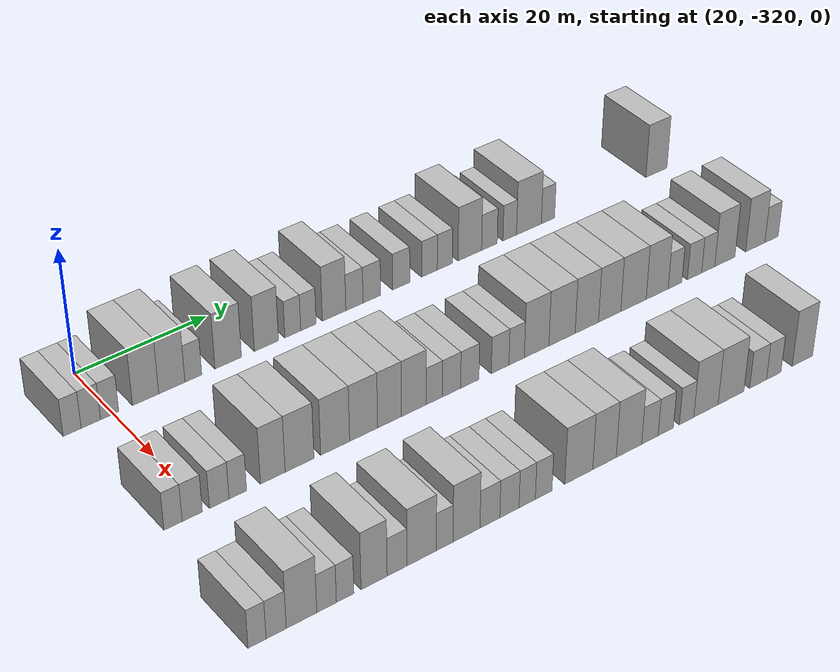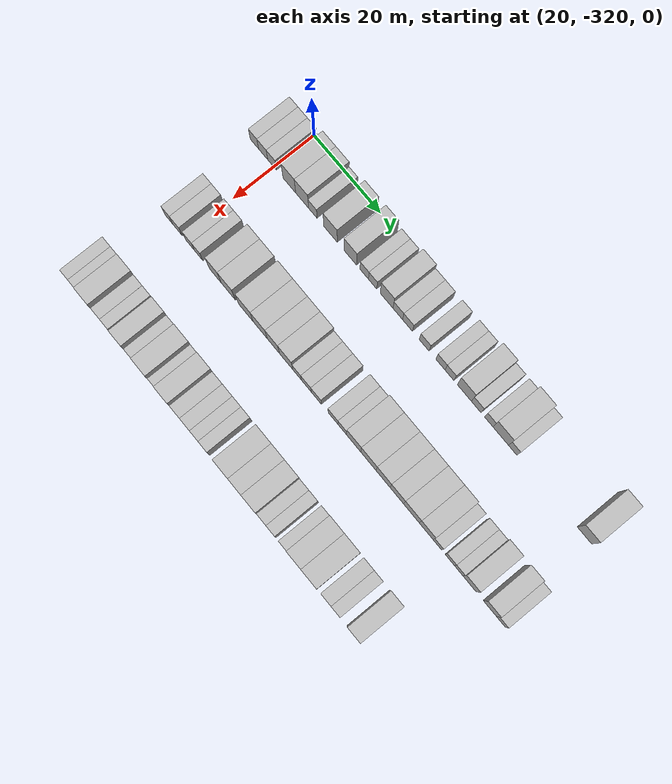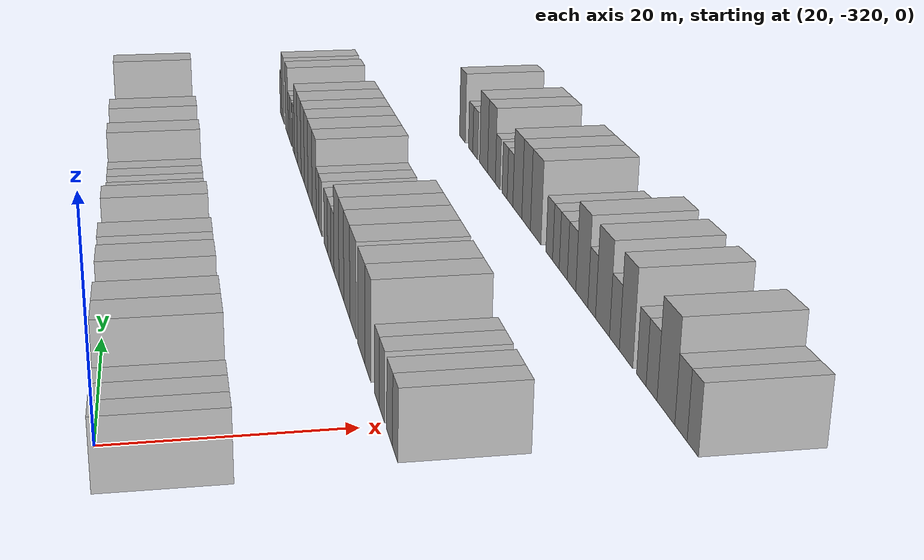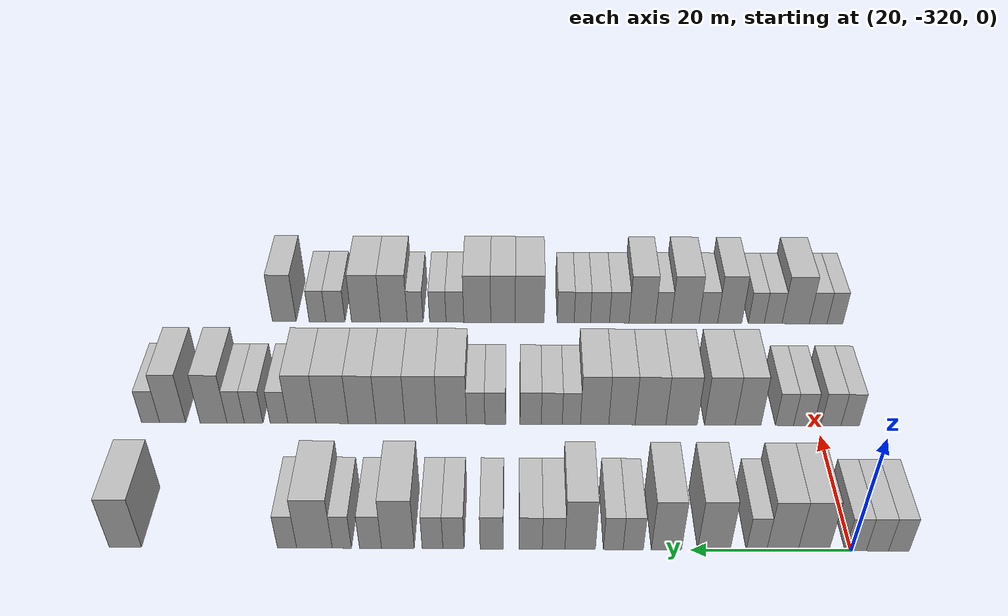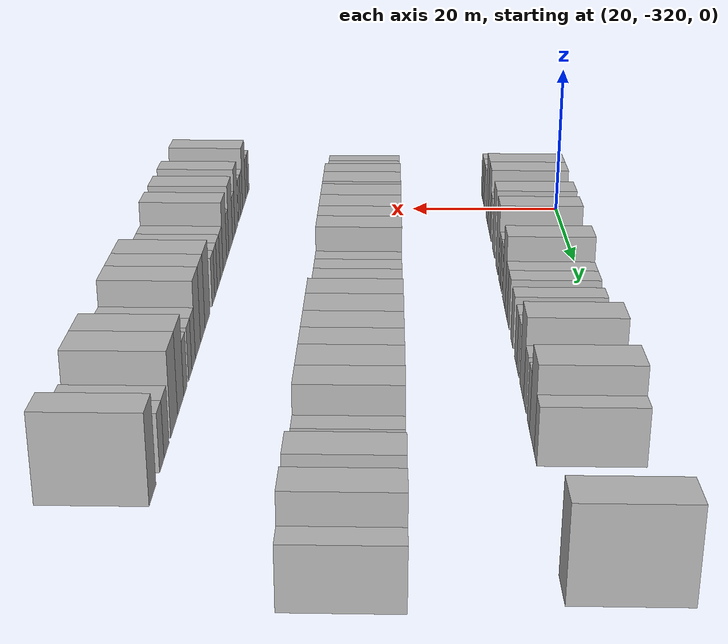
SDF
<sdf version="1.6">
 <world name="default">
  <model name="building_14">
   <static>1</static>
   <pose>25.0000 -325.9310 0 0.000000 0.000000 0.000000</pose>
   <link name="link">
    <pose>0 0 3.00 0 0 0</pose>
    <collision name="collision"><geometry><box><size>10.0000 2.5707 6.0000</size></box></geometry></collision>
    <visual name="visual">
     <cast_shadows>0</cast_shadows>
     <geometry><box><size>10.0000 2.5707 6.0000</size></box></geometry>
     <material>
      <script>
       <uri>model://HANNAS_wall/materials/scripts</uri>
       <uri>model://HANNAS_wall/materials/textures</uri>
       <name>vrc/HANNAS_wall</name>
      </script>
     </material>
    </visual>
   </link>
  </model>
  <model name="building_15">
   <static>1</static>
   <pose>25.0000 -323.2511 0 0.000000 0.000000 0.000000</pose>
   <link name="link">
    <pose>0 0 3.00 0 0 0</pose>
    <collision name="collision"><geometry><box><size>10.0000 2.7890 6.0000</size></box></geometry></collision>
    <visual name="visual">
     <cast_shadows>0</cast_shadows>
     <geometry><box><size>10.0000 2.7890 6.0000</size></box></geometry>
     <material>
      <script>
       <uri>model://HANNAS_wall/materials/scripts</uri>
       <uri>model://HANNAS_wall/materials/textures</uri>
       <name>vrc/HANNAS_wall</name>
      </script>
     </material>
    </visual>
   </link>
  </model>
  <model name="building_16">
   <static>1</static>
   <pose>25.0000 -320.5339 0 0.000000 0.000000 0.000000</pose>
   <link name="link">
    <pose>0 0 3.00 0 0 0</pose>
    <collision name="collision"><geometry><box><size>10.0000 2.6454 6.0000</size></box></geometry></collision>
    <visual name="visual">
     <cast_shadows>0</cast_shadows>
     <geometry><box><size>10.0000 2.6454 6.0000</size></box></geometry>
     <material>
      <script>
       <uri>model://HANNAS_wall/materials/scripts</uri>
       <uri>model://HANNAS_wall/materials/textures</uri>
       <name>vrc/HANNAS_wall</name>
      </script>
     </material>
    </visual>
   </link>
  </model>
  <model name="building_17">
   <static>1</static>
   <pose>25.0000 -315.2770 0 0.000000 0.000000 0.000000</pose>
   <link name="link">
    <pose>0 0 4.50 0 0 0</pose>
    <collision name="collision"><geometry><box><size>10.0000 3.8684 9.0000</size></box></geometry></collision>
    <visual name="visual">
     <cast_shadows>0</cast_shadows>
     <geometry><box><size>10.0000 3.8684 9.0000</size></box></geometry>
     <material>
      <script>
       <uri>model://HANNAS_wall/materials/scripts</uri>
       <uri>model://HANNAS_wall/materials/textures</uri>
       <name>vrc/HANNAS_wall</name>
      </script>
     </material>
    </visual>
   </link>
  </model>
  <model name="building_18">
   <static>1</static>
   <pose>25.0000 -311.3818 0 0.000000 0.000000 0.000000</pose>
   <link name="link">
    <pose>0 0 4.50 0 0 0</pose>
    <collision name="collision"><geometry><box><size>10.0000 3.9218 9.0000</size></box></geometry></collision>
    <visual name="visual">
     <cast_shadows>0</cast_shadows>
     <geometry><box><size>10.0000 3.9218 9.0000</size></box></geometry>
     <material>
      <script>
       <uri>model://HANNAS_wall/materials/scripts</uri>
       <uri>model://HANNAS_wall/materials/textures</uri>
       <name>vrc/HANNAS_wall</name>
      </script>
     </material>
    </visual>
   </link>
  </model>
  <model name="building_19">
   <static>1</static>
   <pose>25.0000 -308.1503 0 0.000000 0.000000 0.000000</pose>
   <link name="link">
    <pose>0 0 3.00 0 0 0</pose>
    <collision name="collision"><geometry><box><size>10.0000 2.5412 6.0000</size></box></geometry></collision>
    <visual name="visual">
     <cast_shadows>0</cast_shadows>
     <geometry><box><size>10.0000 2.5412 6.0000</size></box></geometry>
     <material>
      <script>
       <uri>model://HANNAS_wall/materials/scripts</uri>
       <uri>model://HANNAS_wall/materials/textures</uri>
       <name>vrc/HANNAS_wall</name>
      </script>
     </material>
    </visual>
   </link>
  </model>
  <model name="building_20">
   <static>1</static>
   <pose>25.0000 -302.8381 0 0.000000 0.000000 0.000000</pose>
   <link name="link">
    <pose>0 0 4.50 0 0 0</pose>
    <collision name="collision"><geometry><box><size>10.0000 4.0833 9.0000</size></box></geometry></collision>
    <visual name="visual">
     <cast_shadows>0</cast_shadows>
     <geometry><box><size>10.0000 4.0833 9.0000</size></box></geometry>
     <material>
      <script>
       <uri>model://HANNAS_wall/materials/scripts</uri>
       <uri>model://HANNAS_wall/materials/textures</uri>
       <name>vrc/HANNAS_wall</name>
      </script>
     </material>
    </visual>
   </link>
  </model>
  <model name="building_21">
   <static>1</static>
   <pose>25.0000 -296.9095 0 0.000000 0.000000 0.000000</pose>
   <link name="link">
    <pose>0 0 4.50 0 0 0</pose>
    <collision name="collision"><geometry><box><size>10.0000 3.7738 9.0000</size></box></geometry></collision>
    <visual name="visual">
     <cast_shadows>0</cast_shadows>
     <geometry><box><size>10.0000 3.7738 9.0000</size></box></geometry>
     <material>
      <script>
       <uri>model://HANNAS_wall/materials/scripts</uri>
       <uri>model://HANNAS_wall/materials/textures</uri>
       <name>vrc/HANNAS_wall</name>
      </script>
     </material>
    </visual>
   </link>
  </model>
  <model name="building_22">
   <static>1</static>
   <pose>25.0000 -292.7571 0 0.000000 0.000000 0.000000</pose>
   <link name="link">
    <pose>0 0 3.00 0 0 0</pose>
    <collision name="collision"><geometry><box><size>10.0000 2.5310 6.0000</size></box></geometry></collision>
    <visual name="visual">
     <cast_shadows>0</cast_shadows>
     <geometry><box><size>10.0000 2.5310 6.0000</size></box></geometry>
     <material>
      <script>
       <uri>model://HANNAS_wall/materials/scripts</uri>
       <uri>model://HANNAS_wall/materials/textures</uri>
       <name>vrc/HANNAS_wall</name>
      </script>
     </material>
    </visual>
   </link>
  </model>
  <model name="building_23">
   <static>1</static>
   <pose>25.0000 -290.2609 0 0.000000 0.000000 0.000000</pose>
   <link name="link">
    <pose>0 0 3.00 0 0 0</pose>
    <collision name="collision"><geometry><box><size>10.0000 2.4615 6.0000</size></box></geometry></collision>
    <visual name="visual">
     <cast_shadows>0</cast_shadows>
     <geometry><box><size>10.0000 2.4615 6.0000</size></box></geometry>
     <material>
      <script>
       <uri>model://HANNAS_wall/materials/scripts</uri>
       <uri>model://HANNAS_wall/materials/textures</uri>
       <name>vrc/HANNAS_wall</name>
      </script>
     </material>
    </visual>
   </link>
  </model>
  <model name="building_24">
   <static>1</static>
   <pose>25.0000 -286.1268 0 0.000000 0.000000 0.000000</pose>
   <link name="link">
    <pose>0 0 4.50 0 0 0</pose>
    <collision name="collision"><geometry><box><size>10.0000 3.8066 9.0000</size></box></geometry></collision>
    <visual name="visual">
     <cast_shadows>0</cast_shadows>
     <geometry><box><size>10.0000 3.8066 9.0000</size></box></geometry>
     <material>
      <script>
       <uri>model://HANNAS_wall/materials/scripts</uri>
       <uri>model://HANNAS_wall/materials/textures</uri>
       <name>vrc/HANNAS_wall</name>
      </script>
     </material>
    </visual>
   </link>
  </model>
  <model name="building_25">
   <static>1</static>
   <pose>25.0000 -282.8087 0 0.000000 0.000000 0.000000</pose>
   <link name="link">
    <pose>0 0 3.00 0 0 0</pose>
    <collision name="collision"><geometry><box><size>10.0000 2.8295 6.0000</size></box></geometry></collision>
    <visual name="visual">
     <cast_shadows>0</cast_shadows>
     <geometry><box><size>10.0000 2.8295 6.0000</size></box></geometry>
     <material>
      <script>
       <uri>model://HANNAS_wall/materials/scripts</uri>
       <uri>model://HANNAS_wall/materials/textures</uri>
       <name>vrc/HANNAS_wall</name>
      </script>
     </material>
    </visual>
   </link>
  </model>
  <model name="building_26">
   <static>1</static>
   <pose>25.0000 -279.9445 0 0.000000 0.000000 0.000000</pose>
   <link name="link">
    <pose>0 0 3.00 0 0 0</pose>
    <collision name="collision"><geometry><box><size>10.0000 2.8990 6.0000</size></box></geometry></collision>
    <visual name="visual">
     <cast_shadows>0</cast_shadows>
     <geometry><box><size>10.0000 2.8990 6.0000</size></box></geometry>
     <material>
      <script>
       <uri>model://HANNAS_wall/materials/scripts</uri>
       <uri>model://HANNAS_wall/materials/textures</uri>
       <name>vrc/HANNAS_wall</name>
      </script>
     </material>
    </visual>
   </link>
  </model>
  <model name="building_27">
   <static>1</static>
   <pose>25.0000 -275.0564 0 0.000000 0.000000 0.000000</pose>
   <link name="link">
    <pose>0 0 3.00 0 0 0</pose>
    <collision name="collision"><geometry><box><size>10.0000 2.8771 6.0000</size></box></geometry></collision>
    <visual name="visual">
     <cast_shadows>0</cast_shadows>
     <geometry><box><size>10.0000 2.8771 6.0000</size></box></geometry>
     <material>
      <script>
       <uri>model://HANNAS_wall/materials/scripts</uri>
       <uri>model://HANNAS_wall/materials/textures</uri>
       <name>vrc/HANNAS_wall</name>
      </script>
     </material>
    </visual>
   </link>
  </model>
  <model name="building_28">
   <static>1</static>
   <pose>25.0000 -270.2912 0 0.000000 0.000000 0.000000</pose>
   <link name="link">
    <pose>0 0 3.00 0 0 0</pose>
    <collision name="collision"><geometry><box><size>10.0000 2.6533 6.0000</size></box></geometry></collision>
    <visual name="visual">
     <cast_shadows>0</cast_shadows>
     <geometry><box><size>10.0000 2.6533 6.0000</size></box></geometry>
     <material>
      <script>
       <uri>model://HANNAS_wall/materials/scripts</uri>
       <uri>model://HANNAS_wall/materials/textures</uri>
       <name>vrc/HANNAS_wall</name>
      </script>
     </material>
    </visual>
   </link>
  </model>
  <model name="building_29">
   <static>1</static>
   <pose>25.0000 -267.6693 0 0.000000 0.000000 0.000000</pose>
   <link name="link">
    <pose>0 0 3.00 0 0 0</pose>
    <collision name="collision"><geometry><box><size>10.0000 2.5907 6.0000</size></box></geometry></collision>
    <visual name="visual">
     <cast_shadows>0</cast_shadows>
     <geometry><box><size>10.0000 2.5907 6.0000</size></box></geometry>
     <material>
      <script>
       <uri>model://HANNAS_wall/materials/scripts</uri>
       <uri>model://HANNAS_wall/materials/textures</uri>
       <name>vrc/HANNAS_wall</name>
      </script>
     </material>
    </visual>
   </link>
  </model>
  <model name="building_30">
   <static>1</static>
   <pose>25.0000 -263.3270 0 0.000000 0.000000 0.000000</pose>
   <link name="link">
    <pose>0 0 4.50 0 0 0</pose>
    <collision name="collision"><geometry><box><size>10.0000 4.0939 9.0000</size></box></geometry></collision>
    <visual name="visual">
     <cast_shadows>0</cast_shadows>
     <geometry><box><size>10.0000 4.0939 9.0000</size></box></geometry>
     <material>
      <script>
       <uri>model://HANNAS_wall/materials/scripts</uri>
       <uri>model://HANNAS_wall/materials/textures</uri>
       <name>vrc/HANNAS_wall</name>
      </script>
     </material>
    </visual>
   </link>
  </model>
  <model name="building_31">
   <static>1</static>
   <pose>25.0000 -259.9006 0 0.000000 0.000000 0.000000</pose>
   <link name="link">
    <pose>0 0 3.00 0 0 0</pose>
    <collision name="collision"><geometry><box><size>10.0000 2.7589 6.0000</size></box></geometry></collision>
    <visual name="visual">
     <cast_shadows>0</cast_shadows>
     <geometry><box><size>10.0000 2.7589 6.0000</size></box></geometry>
     <material>
      <script>
       <uri>model://HANNAS_wall/materials/scripts</uri>
       <uri>model://HANNAS_wall/materials/textures</uri>
       <name>vrc/HANNAS_wall</name>
      </script>
     </material>
    </visual>
   </link>
  </model>
  <model name="building_32">
   <static>1</static>
   <pose>25.0000 -256.3173 0 0.000000 0.000000 0.000000</pose>
   <link name="link">
    <pose>0 0 3.00 0 0 0</pose>
    <collision name="collision"><geometry><box><size>10.0000 2.4076 6.0000</size></box></geometry></collision>
    <visual name="visual">
     <cast_shadows>0</cast_shadows>
     <geometry><box><size>10.0000 2.4076 6.0000</size></box></geometry>
     <material>
      <script>
       <uri>model://HANNAS_wall/materials/scripts</uri>
       <uri>model://HANNAS_wall/materials/textures</uri>
       <name>vrc/HANNAS_wall</name>
      </script>
     </material>
    </visual>
   </link>
  </model>
  <model name="building_33">
   <static>1</static>
   <pose>25.0000 -252.8828 0 0.000000 0.000000 0.000000</pose>
   <link name="link">
    <pose>0 0 4.50 0 0 0</pose>
    <collision name="collision"><geometry><box><size>10.0000 4.4615 9.0000</size></box></geometry></collision>
    <visual name="visual">
     <cast_shadows>0</cast_shadows>
     <geometry><box><size>10.0000 4.4615 9.0000</size></box></geometry>
     <material>
      <script>
       <uri>model://HANNAS_wall/materials/scripts</uri>
       <uri>model://HANNAS_wall/materials/textures</uri>
       <name>vrc/HANNAS_wall</name>
      </script>
     </material>
    </visual>
   </link>
  </model>
  <model name="building_34">
   <static>1</static>
   <pose>25.0000 -249.4488 0 0.000000 0.000000 0.000000</pose>
   <link name="link">
    <pose>0 0 3.00 0 0 0</pose>
    <collision name="collision"><geometry><box><size>10.0000 2.4065 6.0000</size></box></geometry></collision>
    <visual name="visual">
     <cast_shadows>0</cast_shadows>
     <geometry><box><size>10.0000 2.4065 6.0000</size></box></geometry>
     <material>
      <script>
       <uri>model://HANNAS_wall/materials/scripts</uri>
       <uri>model://HANNAS_wall/materials/textures</uri>
       <name>vrc/HANNAS_wall</name>
      </script>
     </material>
    </visual>
   </link>
  </model>
  <model name="building_35">
   <static>1</static>
   <pose>25.0000 -229.1625 0 0.000000 0.000000 0.000000</pose>
   <link name="link">
    <pose>0 0 4.50 0 0 0</pose>
    <collision name="collision"><geometry><box><size>10.0000 4.0554 9.0000</size></box></geometry></collision>
    <visual name="visual">
     <cast_shadows>0</cast_shadows>
     <geometry><box><size>10.0000 4.0554 9.0000</size></box></geometry>
     <material>
      <script>
       <uri>model://HANNAS_wall/materials/scripts</uri>
       <uri>model://HANNAS_wall/materials/textures</uri>
       <name>vrc/HANNAS_wall</name>
      </script>
     </material>
    </visual>
   </link>
  </model>
  <model name="building_213">
   <static>1</static>
   <pose>47.0000 -324.5681 0 0.000000 0.000000 0.000000</pose>
   <link name="link">
    <pose>0 0 3.00 0 0 0</pose>
    <collision name="collision"><geometry><box><size>10.0000 2.5375 6.0000</size></box></geometry></collision>
    <visual name="visual">
     <cast_shadows>0</cast_shadows>
     <geometry><box><size>10.0000 2.5375 6.0000</size></box></geometry>
     <material>
      <script>
       <uri>model://HANNAS_wall/materials/scripts</uri>
       <uri>model://HANNAS_wall/materials/textures</uri>
       <name>vrc/HANNAS_wall</name>
      </script>
     </material>
    </visual>
   </link>
  </model>
  <model name="building_214">
   <static>1</static>
   <pose>47.0000 -321.8864 0 0.000000 0.000000 0.000000</pose>
   <link name="link">
    <pose>0 0 3.00 0 0 0</pose>
    <collision name="collision"><geometry><box><size>10.0000 2.8259 6.0000</size></box></geometry></collision>
    <visual name="visual">
     <cast_shadows>0</cast_shadows>
     <geometry><box><size>10.0000 2.8259 6.0000</size></box></geometry>
     <material>
      <script>
       <uri>model://HANNAS_wall/materials/scripts</uri>
       <uri>model://HANNAS_wall/materials/textures</uri>
       <name>vrc/HANNAS_wall</name>
      </script>
     </material>
    </visual>
   </link>
  </model>
  <model name="building_215">
   <static>1</static>
   <pose>47.0000 -318.0817 0 0.000000 0.000000 0.000000</pose>
   <link name="link">
    <pose>0 0 3.00 0 0 0</pose>
    <collision name="collision"><geometry><box><size>10.0000 2.7835 6.0000</size></box></geometry></collision>
    <visual name="visual">
     <cast_shadows>0</cast_shadows>
     <geometry><box><size>10.0000 2.7835 6.0000</size></box></geometry>
     <material>
      <script>
       <uri>model://HANNAS_wall/materials/scripts</uri>
       <uri>model://HANNAS_wall/materials/textures</uri>
       <name>vrc/HANNAS_wall</name>
      </script>
     </material>
    </visual>
   </link>
  </model>
  <model name="building_216">
   <static>1</static>
   <pose>47.0000 -315.4294 0 0.000000 0.000000 0.000000</pose>
   <link name="link">
    <pose>0 0 3.00 0 0 0</pose>
    <collision name="collision"><geometry><box><size>10.0000 2.5211 6.0000</size></box></geometry></collision>
    <visual name="visual">
     <cast_shadows>0</cast_shadows>
     <geometry><box><size>10.0000 2.5211 6.0000</size></box></geometry>
     <material>
      <script>
       <uri>model://HANNAS_wall/materials/scripts</uri>
       <uri>model://HANNAS_wall/materials/textures</uri>
       <name>vrc/HANNAS_wall</name>
      </script>
     </material>
    </visual>
   </link>
  </model>
  <model name="building_217">
   <static>1</static>
   <pose>47.0000 -310.3636 0 0.000000 0.000000 0.000000</pose>
   <link name="link">
    <pose>0 0 4.50 0 0 0</pose>
    <collision name="collision"><geometry><box><size>10.0000 3.6106 9.0000</size></box></geometry></collision>
    <visual name="visual">
     <cast_shadows>0</cast_shadows>
     <geometry><box><size>10.0000 3.6106 9.0000</size></box></geometry>
     <material>
      <script>
       <uri>model://HANNAS_wall/materials/scripts</uri>
       <uri>model://HANNAS_wall/materials/textures</uri>
       <name>vrc/HANNAS_wall</name>
      </script>
     </material>
    </visual>
   </link>
  </model>
  <model name="building_218">
   <static>1</static>
   <pose>47.0000 -306.4245 0 0.000000 0.000000 0.000000</pose>
   <link name="link">
    <pose>0 0 4.50 0 0 0</pose>
    <collision name="collision"><geometry><box><size>10.0000 4.2675 9.0000</size></box></geometry></collision>
    <visual name="visual">
     <cast_shadows>0</cast_shadows>
     <geometry><box><size>10.0000 4.2675 9.0000</size></box></geometry>
     <material>
      <script>
       <uri>model://HANNAS_wall/materials/scripts</uri>
       <uri>model://HANNAS_wall/materials/textures</uri>
       <name>vrc/HANNAS_wall</name>
      </script>
     </material>
    </visual>
   </link>
  </model>
  <model name="building_219">
   <static>1</static>
   <pose>47.0000 -301.1100 0 0.000000 0.000000 0.000000</pose>
   <link name="link">
    <pose>0 0 4.50 0 0 0</pose>
    <collision name="collision"><geometry><box><size>10.0000 4.3615 9.0000</size></box></geometry></collision>
    <visual name="visual">
     <cast_shadows>0</cast_shadows>
     <geometry><box><size>10.0000 4.3615 9.0000</size></box></geometry>
     <material>
      <script>
       <uri>model://HANNAS_wall/materials/scripts</uri>
       <uri>model://HANNAS_wall/materials/textures</uri>
       <name>vrc/HANNAS_wall</name>
      </script>
     </material>
    </visual>
   </link>
  </model>
  <model name="building_220">
   <static>1</static>
   <pose>47.0000 -296.7853 0 0.000000 0.000000 0.000000</pose>
   <link name="link">
    <pose>0 0 4.50 0 0 0</pose>
    <collision name="collision"><geometry><box><size>10.0000 4.2878 9.0000</size></box></geometry></collision>
    <visual name="visual">
     <cast_shadows>0</cast_shadows>
     <geometry><box><size>10.0000 4.2878 9.0000</size></box></geometry>
     <material>
      <script>
       <uri>model://HANNAS_wall/materials/scripts</uri>
       <uri>model://HANNAS_wall/materials/textures</uri>
       <name>vrc/HANNAS_wall</name>
      </script>
     </material>
    </visual>
   </link>
  </model>
  <model name="building_221">
   <static>1</static>
   <pose>47.0000 -292.8085 0 0.000000 0.000000 0.000000</pose>
   <link name="link">
    <pose>0 0 4.50 0 0 0</pose>
    <collision name="collision"><geometry><box><size>10.0000 3.6657 9.0000</size></box></geometry></collision>
    <visual name="visual">
     <cast_shadows>0</cast_shadows>
     <geometry><box><size>10.0000 3.6657 9.0000</size></box></geometry>
     <material>
      <script>
       <uri>model://HANNAS_wall/materials/scripts</uri>
       <uri>model://HANNAS_wall/materials/textures</uri>
       <name>vrc/HANNAS_wall</name>
      </script>
     </material>
    </visual>
   </link>
  </model>
  <model name="building_222">
   <static>1</static>
   <pose>47.0000 -289.0073 0 0.000000 0.000000 0.000000</pose>
   <link name="link">
    <pose>0 0 4.50 0 0 0</pose>
    <collision name="collision"><geometry><box><size>10.0000 3.9368 9.0000</size></box></geometry></collision>
    <visual name="visual">
     <cast_shadows>0</cast_shadows>
     <geometry><box><size>10.0000 3.9368 9.0000</size></box></geometry>
     <material>
      <script>
       <uri>model://HANNAS_wall/materials/scripts</uri>
       <uri>model://HANNAS_wall/materials/textures</uri>
       <name>vrc/HANNAS_wall</name>
      </script>
     </material>
    </visual>
   </link>
  </model>
  <model name="building_223">
   <static>1</static>
   <pose>47.0000 -285.7695 0 0.000000 0.000000 0.000000</pose>
   <link name="link">
    <pose>0 0 3.00 0 0 0</pose>
    <collision name="collision"><geometry><box><size>10.0000 2.5386 6.0000</size></box></geometry></collision>
    <visual name="visual">
     <cast_shadows>0</cast_shadows>
     <geometry><box><size>10.0000 2.5386 6.0000</size></box></geometry>
     <material>
      <script>
       <uri>model://HANNAS_wall/materials/scripts</uri>
       <uri>model://HANNAS_wall/materials/textures</uri>
       <name>vrc/HANNAS_wall</name>
      </script>
     </material>
    </visual>
   </link>
  </model>
  <model name="building_224">
   <static>1</static>
   <pose>47.0000 -283.0421 0 0.000000 0.000000 0.000000</pose>
   <link name="link">
    <pose>0 0 3.00 0 0 0</pose>
    <collision name="collision"><geometry><box><size>10.0000 2.9163 6.0000</size></box></geometry></collision>
    <visual name="visual">
     <cast_shadows>0</cast_shadows>
     <geometry><box><size>10.0000 2.9163 6.0000</size></box></geometry>
     <material>
      <script>
       <uri>model://HANNAS_wall/materials/scripts</uri>
       <uri>model://HANNAS_wall/materials/textures</uri>
       <name>vrc/HANNAS_wall</name>
      </script>
     </material>
    </visual>
   </link>
  </model>
  <model name="building_225">
   <static>1</static>
   <pose>47.0000 -280.1031 0 0.000000 0.000000 0.000000</pose>
   <link name="link">
    <pose>0 0 3.00 0 0 0</pose>
    <collision name="collision"><geometry><box><size>10.0000 2.9617 6.0000</size></box></geometry></collision>
    <visual name="visual">
     <cast_shadows>0</cast_shadows>
     <geometry><box><size>10.0000 2.9617 6.0000</size></box></geometry>
     <material>
      <script>
       <uri>model://HANNAS_wall/materials/scripts</uri>
       <uri>model://HANNAS_wall/materials/textures</uri>
       <name>vrc/HANNAS_wall</name>
      </script>
     </material>
    </visual>
   </link>
  </model>
  <model name="building_226">
   <static>1</static>
   <pose>47.0000 -275.1732 0 0.000000 0.000000 0.000000</pose>
   <link name="link">
    <pose>0 0 3.00 0 0 0</pose>
    <collision name="collision"><geometry><box><size>10.0000 2.8981 6.0000</size></box></geometry></collision>
    <visual name="visual">
     <cast_shadows>0</cast_shadows>
     <geometry><box><size>10.0000 2.8981 6.0000</size></box></geometry>
     <material>
      <script>
       <uri>model://HANNAS_wall/materials/scripts</uri>
       <uri>model://HANNAS_wall/materials/textures</uri>
       <name>vrc/HANNAS_wall</name>
      </script>
     </material>
    </visual>
   </link>
  </model>
  <model name="building_227">
   <static>1</static>
   <pose>47.0000 -272.4471 0 0.000000 0.000000 0.000000</pose>
   <link name="link">
    <pose>0 0 3.00 0 0 0</pose>
    <collision name="collision"><geometry><box><size>10.0000 2.5540 6.0000</size></box></geometry></collision>
    <visual name="visual">
     <cast_shadows>0</cast_shadows>
     <geometry><box><size>10.0000 2.5540 6.0000</size></box></geometry>
     <material>
      <script>
       <uri>model://HANNAS_wall/materials/scripts</uri>
       <uri>model://HANNAS_wall/materials/textures</uri>
       <name>vrc/HANNAS_wall</name>
      </script>
     </material>
    </visual>
   </link>
  </model>
  <model name="building_228">
   <static>1</static>
   <pose>47.0000 -269.1155 0 0.000000 0.000000 0.000000</pose>
   <link name="link">
    <pose>0 0 4.50 0 0 0</pose>
    <collision name="collision"><geometry><box><size>10.0000 4.1092 9.0000</size></box></geometry></collision>
    <visual name="visual">
     <cast_shadows>0</cast_shadows>
     <geometry><box><size>10.0000 4.1092 9.0000</size></box></geometry>
     <material>
      <script>
       <uri>model://HANNAS_wall/materials/scripts</uri>
       <uri>model://HANNAS_wall/materials/textures</uri>
       <name>vrc/HANNAS_wall</name>
      </script>
     </material>
    </visual>
   </link>
  </model>
  <model name="building_229">
   <static>1</static>
   <pose>47.0000 -264.8277 0 0.000000 0.000000 0.000000</pose>
   <link name="link">
    <pose>0 0 4.50 0 0 0</pose>
    <collision name="collision"><geometry><box><size>10.0000 4.4664 9.0000</size></box></geometry></collision>
    <visual name="visual">
     <cast_shadows>0</cast_shadows>
     <geometry><box><size>10.0000 4.4664 9.0000</size></box></geometry>
     <material>
      <script>
       <uri>model://HANNAS_wall/materials/scripts</uri>
       <uri>model://HANNAS_wall/materials/textures</uri>
       <name>vrc/HANNAS_wall</name>
      </script>
     </material>
    </visual>
   </link>
  </model>
  <model name="building_230">
   <static>1</static>
   <pose>47.0000 -260.5799 0 0.000000 0.000000 0.000000</pose>
   <link name="link">
    <pose>0 0 4.50 0 0 0</pose>
    <collision name="collision"><geometry><box><size>10.0000 4.0293 9.0000</size></box></geometry></collision>
    <visual name="visual">
     <cast_shadows>0</cast_shadows>
     <geometry><box><size>10.0000 4.0293 9.0000</size></box></geometry>
     <material>
      <script>
       <uri>model://HANNAS_wall/materials/scripts</uri>
       <uri>model://HANNAS_wall/materials/textures</uri>
       <name>vrc/HANNAS_wall</name>
      </script>
     </material>
    </visual>
   </link>
  </model>
  <model name="building_231">
   <static>1</static>
   <pose>47.0000 -256.6258 0 0.000000 0.000000 0.000000</pose>
   <link name="link">
    <pose>0 0 4.50 0 0 0</pose>
    <collision name="collision"><geometry><box><size>10.0000 3.8789 9.0000</size></box></geometry></collision>
    <visual name="visual">
     <cast_shadows>0</cast_shadows>
     <geometry><box><size>10.0000 3.8789 9.0000</size></box></geometry>
     <material>
      <script>
       <uri>model://HANNAS_wall/materials/scripts</uri>
       <uri>model://HANNAS_wall/materials/textures</uri>
       <name>vrc/HANNAS_wall</name>
      </script>
     </material>
    </visual>
   </link>
  </model>
  <model name="building_232">
   <static>1</static>
   <pose>47.0000 -252.4439 0 0.000000 0.000000 0.000000</pose>
   <link name="link">
    <pose>0 0 4.50 0 0 0</pose>
    <collision name="collision"><geometry><box><size>10.0000 4.4848 9.0000</size></box></geometry></collision>
    <visual name="visual">
     <cast_shadows>0</cast_shadows>
     <geometry><box><size>10.0000 4.4848 9.0000</size></box></geometry>
     <material>
      <script>
       <uri>model://HANNAS_wall/materials/scripts</uri>
       <uri>model://HANNAS_wall/materials/textures</uri>
       <name>vrc/HANNAS_wall</name>
      </script>
     </material>
    </visual>
   </link>
  </model>
  <model name="building_233">
   <static>1</static>
   <pose>47.0000 -248.2338 0 0.000000 0.000000 0.000000</pose>
   <link name="link">
    <pose>0 0 4.50 0 0 0</pose>
    <collision name="collision"><geometry><box><size>10.0000 3.9355 9.0000</size></box></geometry></collision>
    <visual name="visual">
     <cast_shadows>0</cast_shadows>
     <geometry><box><size>10.0000 3.9355 9.0000</size></box></geometry>
     <material>
      <script>
       <uri>model://HANNAS_wall/materials/scripts</uri>
       <uri>model://HANNAS_wall/materials/textures</uri>
       <name>vrc/HANNAS_wall</name>
      </script>
     </material>
    </visual>
   </link>
  </model>
  <model name="building_234">
   <static>1</static>
   <pose>47.0000 -245.0266 0 0.000000 0.000000 0.000000</pose>
   <link name="link">
    <pose>0 0 3.00 0 0 0</pose>
    <collision name="collision"><geometry><box><size>10.0000 2.4789 6.0000</size></box></geometry></collision>
    <visual name="visual">
     <cast_shadows>0</cast_shadows>
     <geometry><box><size>10.0000 2.4789 6.0000</size></box></geometry>
     <material>
      <script>
       <uri>model://HANNAS_wall/materials/scripts</uri>
       <uri>model://HANNAS_wall/materials/textures</uri>
       <name>vrc/HANNAS_wall</name>
      </script>
     </material>
    </visual>
   </link>
  </model>
  <model name="building_235">
   <static>1</static>
   <pose>47.0000 -241.4816 0 0.000000 0.000000 0.000000</pose>
   <link name="link">
    <pose>0 0 3.00 0 0 0</pose>
    <collision name="collision"><geometry><box><size>10.0000 2.6111 6.0000</size></box></geometry></collision>
    <visual name="visual">
     <cast_shadows>0</cast_shadows>
     <geometry><box><size>10.0000 2.6111 6.0000</size></box></geometry>
     <material>
      <script>
       <uri>model://HANNAS_wall/materials/scripts</uri>
       <uri>model://HANNAS_wall/materials/textures</uri>
       <name>vrc/HANNAS_wall</name>
      </script>
     </material>
    </visual>
   </link>
  </model>
  <model name="building_236">
   <static>1</static>
   <pose>47.0000 -238.9690 0 0.000000 0.000000 0.000000</pose>
   <link name="link">
    <pose>0 0 3.00 0 0 0</pose>
    <collision name="collision"><geometry><box><size>10.0000 2.4140 6.0000</size></box></geometry></collision>
    <visual name="visual">
     <cast_shadows>0</cast_shadows>
     <geometry><box><size>10.0000 2.4140 6.0000</size></box></geometry>
     <material>
      <script>
       <uri>model://HANNAS_wall/materials/scripts</uri>
       <uri>model://HANNAS_wall/materials/textures</uri>
       <name>vrc/HANNAS_wall</name>
      </script>
     </material>
    </visual>
   </link>
  </model>
  <model name="building_237">
   <static>1</static>
   <pose>47.0000 -235.8809 0 0.000000 0.000000 0.000000</pose>
   <link name="link">
    <pose>0 0 4.50 0 0 0</pose>
    <collision name="collision"><geometry><box><size>10.0000 3.7623 9.0000</size></box></geometry></collision>
    <visual name="visual">
     <cast_shadows>0</cast_shadows>
     <geometry><box><size>10.0000 3.7623 9.0000</size></box></geometry>
     <material>
      <script>
       <uri>model://HANNAS_wall/materials/scripts</uri>
       <uri>model://HANNAS_wall/materials/textures</uri>
       <name>vrc/HANNAS_wall</name>
      </script>
     </material>
    </visual>
   </link>
  </model>
  <model name="building_238">
   <static>1</static>
   <pose>47.0000 -230.1764 0 0.000000 0.000000 0.000000</pose>
   <link name="link">
    <pose>0 0 4.50 0 0 0</pose>
    <collision name="collision"><geometry><box><size>10.0000 3.6467 9.0000</size></box></geometry></collision>
    <visual name="visual">
     <cast_shadows>0</cast_shadows>
     <geometry><box><size>10.0000 3.6467 9.0000</size></box></geometry>
     <material>
      <script>
       <uri>model://HANNAS_wall/materials/scripts</uri>
       <uri>model://HANNAS_wall/materials/textures</uri>
       <name>vrc/HANNAS_wall</name>
      </script>
     </material>
    </visual>
   </link>
  </model>
  <model name="building_239">
   <static>1</static>
   <pose>47.0000 -227.0869 0 0.000000 0.000000 0.000000</pose>
   <link name="link">
    <pose>0 0 3.00 0 0 0</pose>
    <collision name="collision"><geometry><box><size>10.0000 2.5323 6.0000</size></box></geometry></collision>
    <visual name="visual">
     <cast_shadows>0</cast_shadows>
     <geometry><box><size>10.0000 2.5323 6.0000</size></box></geometry>
     <material>
      <script>
       <uri>model://HANNAS_wall/materials/scripts</uri>
       <uri>model://HANNAS_wall/materials/textures</uri>
       <name>vrc/HANNAS_wall</name>
      </script>
     </material>
    </visual>
   </link>
  </model>
  <model name="building_408">
   <static>1</static>
   <pose>69.0000 -326.9373 0 0.000000 0.000000 0.000000</pose>
   <link name="link">
    <pose>0 0 3.00 0 0 0</pose>
    <collision name="collision"><geometry><box><size>10.0000 2.4248 6.0000</size></box></geometry></collision>
    <visual name="visual">
     <cast_shadows>0</cast_shadows>
     <geometry><box><size>10.0000 2.4248 6.0000</size></box></geometry>
     <material>
      <script>
       <uri>model://HANNAS_wall/materials/scripts</uri>
       <uri>model://HANNAS_wall/materials/textures</uri>
       <name>vrc/HANNAS_wall</name>
      </script>
     </material>
    </visual>
   </link>
  </model>
  <model name="building_409">
   <static>1</static>
   <pose>69.0000 -324.3661 0 0.000000 0.000000 0.000000</pose>
   <link name="link">
    <pose>0 0 3.00 0 0 0</pose>
    <collision name="collision"><geometry><box><size>10.0000 2.7176 6.0000</size></box></geometry></collision>
    <visual name="visual">
     <cast_shadows>0</cast_shadows>
     <geometry><box><size>10.0000 2.7176 6.0000</size></box></geometry>
     <material>
      <script>
       <uri>model://HANNAS_wall/materials/scripts</uri>
       <uri>model://HANNAS_wall/materials/textures</uri>
       <name>vrc/HANNAS_wall</name>
      </script>
     </material>
    </visual>
   </link>
  </model>
  <model name="building_410">
   <static>1</static>
   <pose>69.0000 -320.9168 0 0.000000 0.000000 0.000000</pose>
   <link name="link">
    <pose>0 0 4.50 0 0 0</pose>
    <collision name="collision"><geometry><box><size>10.0000 4.1808 9.0000</size></box></geometry></collision>
    <visual name="visual">
     <cast_shadows>0</cast_shadows>
     <geometry><box><size>10.0000 4.1808 9.0000</size></box></geometry>
     <material>
      <script>
       <uri>model://HANNAS_wall/materials/scripts</uri>
       <uri>model://HANNAS_wall/materials/textures</uri>
       <name>vrc/HANNAS_wall</name>
      </script>
     </material>
    </visual>
   </link>
  </model>
  <model name="building_411">
   <static>1</static>
   <pose>69.0000 -317.4699 0 0.000000 0.000000 0.000000</pose>
   <link name="link">
    <pose>0 0 3.00 0 0 0</pose>
    <collision name="collision"><geometry><box><size>10.0000 2.7131 6.0000</size></box></geometry></collision>
    <visual name="visual">
     <cast_shadows>0</cast_shadows>
     <geometry><box><size>10.0000 2.7131 6.0000</size></box></geometry>
     <material>
      <script>
       <uri>model://HANNAS_wall/materials/scripts</uri>
       <uri>model://HANNAS_wall/materials/textures</uri>
       <name>vrc/HANNAS_wall</name>
      </script>
     </material>
    </visual>
   </link>
  </model>
  <model name="building_412">
   <static>1</static>
   <pose>69.0000 -314.8883 0 0.000000 0.000000 0.000000</pose>
   <link name="link">
    <pose>0 0 3.00 0 0 0</pose>
    <collision name="collision"><geometry><box><size>10.0000 2.4499 6.0000</size></box></geometry></collision>
    <visual name="visual">
     <cast_shadows>0</cast_shadows>
     <geometry><box><size>10.0000 2.4499 6.0000</size></box></geometry>
     <material>
      <script>
       <uri>model://HANNAS_wall/materials/scripts</uri>
       <uri>model://HANNAS_wall/materials/textures</uri>
       <name>vrc/HANNAS_wall</name>
      </script>
     </material>
    </visual>
   </link>
  </model>
  <model name="building_413">
   <static>1</static>
   <pose>69.0000 -310.8094 0 0.000000 0.000000 0.000000</pose>
   <link name="link">
    <pose>0 0 4.50 0 0 0</pose>
    <collision name="collision"><geometry><box><size>10.0000 3.7079 9.0000</size></box></geometry></collision>
    <visual name="visual">
     <cast_shadows>0</cast_shadows>
     <geometry><box><size>10.0000 3.7079 9.0000</size></box></geometry>
     <material>
      <script>
       <uri>model://HANNAS_wall/materials/scripts</uri>
       <uri>model://HANNAS_wall/materials/textures</uri>
       <name>vrc/HANNAS_wall</name>
      </script>
     </material>
    </visual>
   </link>
  </model>
  <model name="building_414">
   <static>1</static>
   <pose>69.0000 -307.5290 0 0.000000 0.000000 0.000000</pose>
   <link name="link">
    <pose>0 0 3.00 0 0 0</pose>
    <collision name="collision"><geometry><box><size>10.0000 2.8530 6.0000</size></box></geometry></collision>
    <visual name="visual">
     <cast_shadows>0</cast_shadows>
     <geometry><box><size>10.0000 2.8530 6.0000</size></box></geometry>
     <material>
      <script>
       <uri>model://HANNAS_wall/materials/scripts</uri>
       <uri>model://HANNAS_wall/materials/textures</uri>
       <name>vrc/HANNAS_wall</name>
      </script>
     </material>
    </visual>
   </link>
  </model>
  <model name="building_415">
   <static>1</static>
   <pose>69.0000 -303.9671 0 0.000000 0.000000 0.000000</pose>
   <link name="link">
    <pose>0 0 4.50 0 0 0</pose>
    <collision name="collision"><geometry><box><size>10.0000 4.2707 9.0000</size></box></geometry></collision>
    <visual name="visual">
     <cast_shadows>0</cast_shadows>
     <geometry><box><size>10.0000 4.2707 9.0000</size></box></geometry>
     <material>
      <script>
       <uri>model://HANNAS_wall/materials/scripts</uri>
       <uri>model://HANNAS_wall/materials/textures</uri>
       <name>vrc/HANNAS_wall</name>
      </script>
     </material>
    </visual>
   </link>
  </model>
  <model name="building_416">
   <static>1</static>
   <pose>69.0000 -300.6074 0 0.000000 0.000000 0.000000</pose>
   <link name="link">
    <pose>0 0 3.00 0 0 0</pose>
    <collision name="collision"><geometry><box><size>10.0000 2.4488 6.0000</size></box></geometry></collision>
    <visual name="visual">
     <cast_shadows>0</cast_shadows>
     <geometry><box><size>10.0000 2.4488 6.0000</size></box></geometry>
     <material>
      <script>
       <uri>model://HANNAS_wall/materials/scripts</uri>
       <uri>model://HANNAS_wall/materials/textures</uri>
       <name>vrc/HANNAS_wall</name>
      </script>
     </material>
    </visual>
   </link>
  </model>
  <model name="building_417">
   <static>1</static>
   <pose>69.0000 -297.3727 0 0.000000 0.000000 0.000000</pose>
   <link name="link">
    <pose>0 0 4.50 0 0 0</pose>
    <collision name="collision"><geometry><box><size>10.0000 4.0205 9.0000</size></box></geometry></collision>
    <visual name="visual">
     <cast_shadows>0</cast_shadows>
     <geometry><box><size>10.0000 4.0205 9.0000</size></box></geometry>
     <material>
      <script>
       <uri>model://HANNAS_wall/materials/scripts</uri>
       <uri>model://HANNAS_wall/materials/textures</uri>
       <name>vrc/HANNAS_wall</name>
      </script>
     </material>
    </visual>
   </link>
  </model>
  <model name="building_418">
   <static>1</static>
   <pose>69.0000 -293.8676 0 0.000000 0.000000 0.000000</pose>
   <link name="link">
    <pose>0 0 3.00 0 0 0</pose>
    <collision name="collision"><geometry><box><size>10.0000 2.9897 6.0000</size></box></geometry></collision>
    <visual name="visual">
     <cast_shadows>0</cast_shadows>
     <geometry><box><size>10.0000 2.9897 6.0000</size></box></geometry>
     <material>
      <script>
       <uri>model://HANNAS_wall/materials/scripts</uri>
       <uri>model://HANNAS_wall/materials/textures</uri>
       <name>vrc/HANNAS_wall</name>
      </script>
     </material>
    </visual>
   </link>
  </model>
  <model name="building_419">
   <static>1</static>
   <pose>69.0000 -290.9058 0 0.000000 0.000000 0.000000</pose>
   <link name="link">
    <pose>0 0 3.00 0 0 0</pose>
    <collision name="collision"><geometry><box><size>10.0000 2.9340 6.0000</size></box></geometry></collision>
    <visual name="visual">
     <cast_shadows>0</cast_shadows>
     <geometry><box><size>10.0000 2.9340 6.0000</size></box></geometry>
     <material>
      <script>
       <uri>model://HANNAS_wall/materials/scripts</uri>
       <uri>model://HANNAS_wall/materials/textures</uri>
       <name>vrc/HANNAS_wall</name>
      </script>
     </material>
    </visual>
   </link>
  </model>
  <model name="building_420">
   <static>1</static>
   <pose>69.0000 -288.1866 0 0.000000 0.000000 0.000000</pose>
   <link name="link">
    <pose>0 0 3.00 0 0 0</pose>
    <collision name="collision"><geometry><box><size>10.0000 2.5043 6.0000</size></box></geometry></collision>
    <visual name="visual">
     <cast_shadows>0</cast_shadows>
     <geometry><box><size>10.0000 2.5043 6.0000</size></box></geometry>
     <material>
      <script>
       <uri>model://HANNAS_wall/materials/scripts</uri>
       <uri>model://HANNAS_wall/materials/textures</uri>
       <name>vrc/HANNAS_wall</name>
      </script>
     </material>
    </visual>
   </link>
  </model>
  <model name="building_421">
   <static>1</static>
   <pose>69.0000 -285.6381 0 0.000000 0.000000 0.000000</pose>
   <link name="link">
    <pose>0 0 3.00 0 0 0</pose>
    <collision name="collision"><geometry><box><size>10.0000 2.5926 6.0000</size></box></geometry></collision>
    <visual name="visual">
     <cast_shadows>0</cast_shadows>
     <geometry><box><size>10.0000 2.5926 6.0000</size></box></geometry>
     <material>
      <script>
       <uri>model://HANNAS_wall/materials/scripts</uri>
       <uri>model://HANNAS_wall/materials/textures</uri>
       <name>vrc/HANNAS_wall</name>
      </script>
     </material>
    </visual>
   </link>
  </model>
  <model name="building_422">
   <static>1</static>
   <pose>69.0000 -280.1263 0 0.000000 0.000000 0.000000</pose>
   <link name="link">
    <pose>0 0 4.50 0 0 0</pose>
    <collision name="collision"><geometry><box><size>10.0000 4.4311 9.0000</size></box></geometry></collision>
    <visual name="visual">
     <cast_shadows>0</cast_shadows>
     <geometry><box><size>10.0000 4.4311 9.0000</size></box></geometry>
     <material>
      <script>
       <uri>model://HANNAS_wall/materials/scripts</uri>
       <uri>model://HANNAS_wall/materials/textures</uri>
       <name>vrc/HANNAS_wall</name>
      </script>
     </material>
    </visual>
   </link>
  </model>
  <model name="building_423">
   <static>1</static>
   <pose>69.0000 -276.0277 0 0.000000 0.000000 0.000000</pose>
   <link name="link">
    <pose>0 0 4.50 0 0 0</pose>
    <collision name="collision"><geometry><box><size>10.0000 3.7662 9.0000</size></box></geometry></collision>
    <visual name="visual">
     <cast_shadows>0</cast_shadows>
     <geometry><box><size>10.0000 3.7662 9.0000</size></box></geometry>
     <material>
      <script>
       <uri>model://HANNAS_wall/materials/scripts</uri>
       <uri>model://HANNAS_wall/materials/textures</uri>
       <name>vrc/HANNAS_wall</name>
      </script>
     </material>
    </visual>
   </link>
  </model>
  <model name="building_424">
   <static>1</static>
   <pose>69.0000 -272.0781 0 0.000000 0.000000 0.000000</pose>
   <link name="link">
    <pose>0 0 4.50 0 0 0</pose>
    <collision name="collision"><geometry><box><size>10.0000 4.1329 9.0000</size></box></geometry></collision>
    <visual name="visual">
     <cast_shadows>0</cast_shadows>
     <geometry><box><size>10.0000 4.1329 9.0000</size></box></geometry>
     <material>
      <script>
       <uri>model://HANNAS_wall/materials/scripts</uri>
       <uri>model://HANNAS_wall/materials/textures</uri>
       <name>vrc/HANNAS_wall</name>
      </script>
     </material>
    </visual>
   </link>
  </model>
  <model name="building_425">
   <static>1</static>
   <pose>69.0000 -268.6537 0 0.000000 0.000000 0.000000</pose>
   <link name="link">
    <pose>0 0 3.00 0 0 0</pose>
    <collision name="collision"><geometry><box><size>10.0000 2.7160 6.0000</size></box></geometry></collision>
    <visual name="visual">
     <cast_shadows>0</cast_shadows>
     <geometry><box><size>10.0000 2.7160 6.0000</size></box></geometry>
     <material>
      <script>
       <uri>model://HANNAS_wall/materials/scripts</uri>
       <uri>model://HANNAS_wall/materials/textures</uri>
       <name>vrc/HANNAS_wall</name>
      </script>
     </material>
    </visual>
   </link>
  </model>
  <model name="building_426">
   <static>1</static>
   <pose>69.0000 -266.0315 0 0.000000 0.000000 0.000000</pose>
   <link name="link">
    <pose>0 0 3.00 0 0 0</pose>
    <collision name="collision"><geometry><box><size>10.0000 2.5283 6.0000</size></box></geometry></collision>
    <visual name="visual">
     <cast_shadows>0</cast_shadows>
     <geometry><box><size>10.0000 2.5283 6.0000</size></box></geometry>
     <material>
      <script>
       <uri>model://HANNAS_wall/materials/scripts</uri>
       <uri>model://HANNAS_wall/materials/textures</uri>
       <name>vrc/HANNAS_wall</name>
      </script>
     </material>
    </visual>
   </link>
  </model>
  <model name="building_427">
   <static>1</static>
   <pose>69.0000 -262.5498 0 0.000000 0.000000 0.000000</pose>
   <link name="link">
    <pose>0 0 3.00 0 0 0</pose>
    <collision name="collision"><geometry><box><size>10.0000 2.4351 6.0000</size></box></geometry></collision>
    <visual name="visual">
     <cast_shadows>0</cast_shadows>
     <geometry><box><size>10.0000 2.4351 6.0000</size></box></geometry>
     <material>
      <script>
       <uri>model://HANNAS_wall/materials/scripts</uri>
       <uri>model://HANNAS_wall/materials/textures</uri>
       <name>vrc/HANNAS_wall</name>
      </script>
     </material>
    </visual>
   </link>
  </model>
  <model name="building_428">
   <static>1</static>
   <pose>69.0000 -259.2741 0 0.000000 0.000000 0.000000</pose>
   <link name="link">
    <pose>0 0 4.50 0 0 0</pose>
    <collision name="collision"><geometry><box><size>10.0000 4.1163 9.0000</size></box></geometry></collision>
    <visual name="visual">
     <cast_shadows>0</cast_shadows>
     <geometry><box><size>10.0000 4.1163 9.0000</size></box></geometry>
     <material>
      <script>
       <uri>model://HANNAS_wall/materials/scripts</uri>
       <uri>model://HANNAS_wall/materials/textures</uri>
       <name>vrc/HANNAS_wall</name>
      </script>
     </material>
    </visual>
   </link>
  </model>
  <model name="building_429">
   <static>1</static>
   <pose>69.0000 -254.9862 0 0.000000 0.000000 0.000000</pose>
   <link name="link">
    <pose>0 0 4.50 0 0 0</pose>
    <collision name="collision"><geometry><box><size>10.0000 4.4596 9.0000</size></box></geometry></collision>
    <visual name="visual">
     <cast_shadows>0</cast_shadows>
     <geometry><box><size>10.0000 4.4596 9.0000</size></box></geometry>
     <material>
      <script>
       <uri>model://HANNAS_wall/materials/scripts</uri>
       <uri>model://HANNAS_wall/materials/textures</uri>
       <name>vrc/HANNAS_wall</name>
      </script>
     </material>
    </visual>
   </link>
  </model>
  <model name="building_430">
   <static>1</static>
   <pose>69.0000 -250.2835 0 0.000000 0.000000 0.000000</pose>
   <link name="link">
    <pose>0 0 3.00 0 0 0</pose>
    <collision name="collision"><geometry><box><size>10.0000 2.9459 6.0000</size></box></geometry></collision>
    <visual name="visual">
     <cast_shadows>0</cast_shadows>
     <geometry><box><size>10.0000 2.9459 6.0000</size></box></geometry>
     <material>
      <script>
       <uri>model://HANNAS_wall/materials/scripts</uri>
       <uri>model://HANNAS_wall/materials/textures</uri>
       <name>vrc/HANNAS_wall</name>
      </script>
     </material>
    </visual>
   </link>
  </model>
  <model name="building_431">
   <static>1</static>
   <pose>69.0000 -247.5322 0 0.000000 0.000000 0.000000</pose>
   <link name="link">
    <pose>0 0 3.00 0 0 0</pose>
    <collision name="collision"><geometry><box><size>10.0000 2.5565 6.0000</size></box></geometry></collision>
    <visual name="visual">
     <cast_shadows>0</cast_shadows>
     <geometry><box><size>10.0000 2.5565 6.0000</size></box></geometry>
     <material>
      <script>
       <uri>model://HANNAS_wall/materials/scripts</uri>
       <uri>model://HANNAS_wall/materials/textures</uri>
       <name>vrc/HANNAS_wall</name>
      </script>
     </material>
    </visual>
   </link>
  </model>
  <model name="building_432">
   <static>1</static>
   <pose>69.0000 -242.4292 0 0.000000 0.000000 0.000000</pose>
   <link name="link">
    <pose>0 0 4.50 0 0 0</pose>
    <collision name="collision"><geometry><box><size>10.0000 3.6495 9.0000</size></box></geometry></collision>
    <visual name="visual">
     <cast_shadows>0</cast_shadows>
     <geometry><box><size>10.0000 3.6495 9.0000</size></box></geometry>
     <material>
      <script>
       <uri>model://HANNAS_wall/materials/scripts</uri>
       <uri>model://HANNAS_wall/materials/textures</uri>
       <name>vrc/HANNAS_wall</name>
      </script>
     </material>
    </visual>
   </link>
  </model>
 </world>
</sdf>
